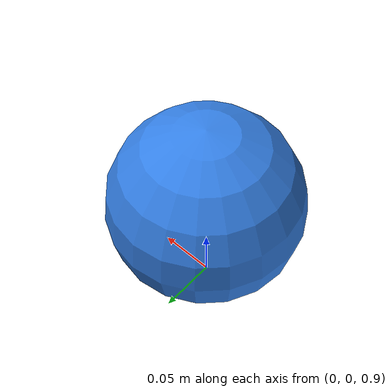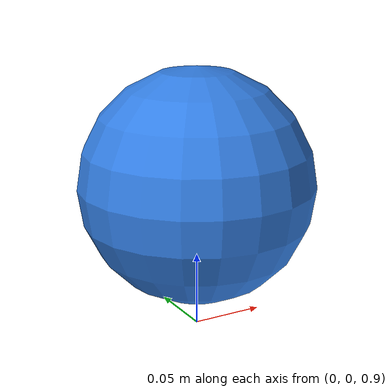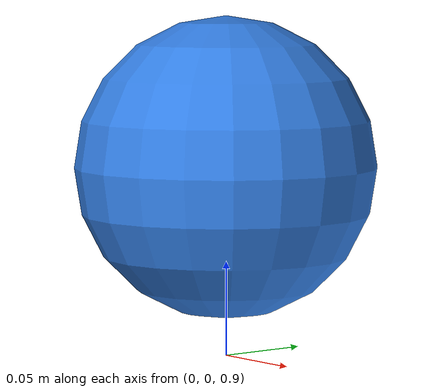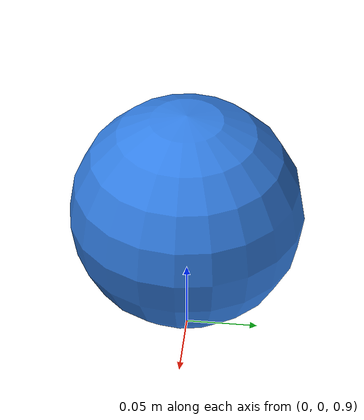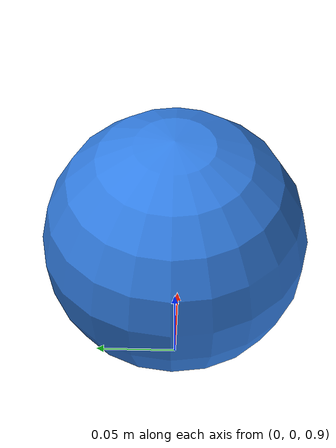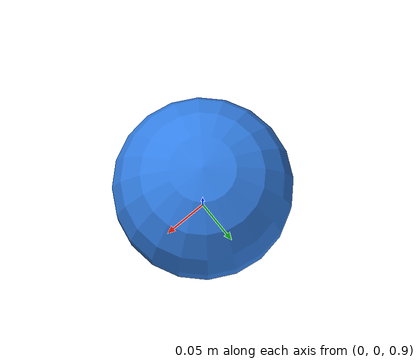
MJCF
<mujoco model="falling_ball">
  <option timestep="0.002" gravity="0 0 -9.81"/>

  <worldbody>
    <light pos="0 0 3"/>

    <geom
      name="ground"
      type="plane"
      size="2 2 0.1"
      rgba="0.8 0.8 0.8 1"/>

    <body name="ball" pos="0 0 1">
      <freejoint/>
      <geom
        name="ball_geom"
        type="sphere"
        size="0.08"
        mass="0.2"
        rgba="0.2 0.5 0.9 1"/>
    </body>
  </worldbody>
</mujoco>
